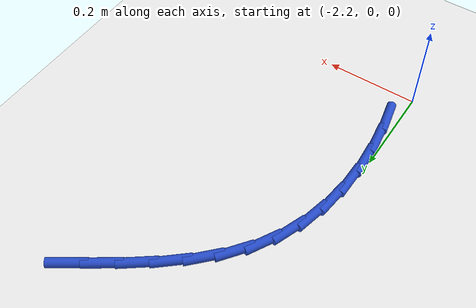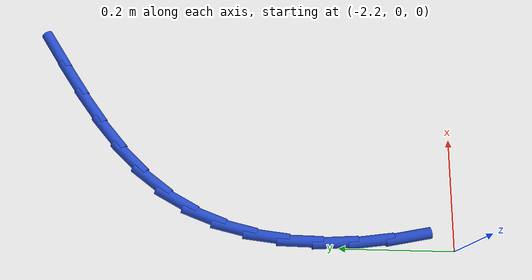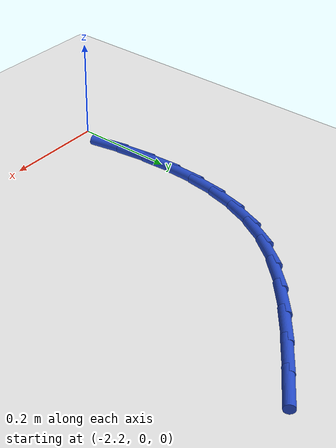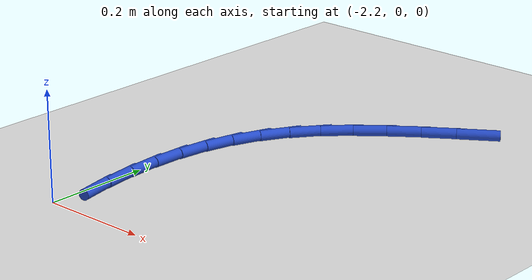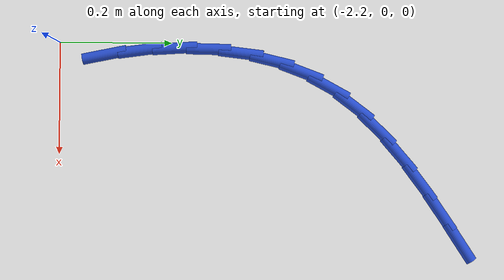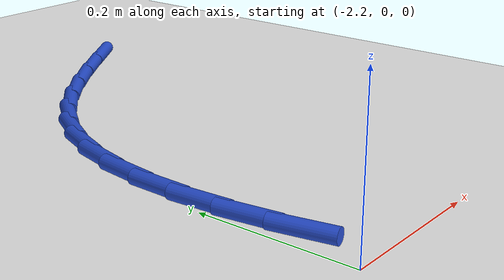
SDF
<sdf version="1.6">
 <world name="default">
  <model name="ground_plane">
   <static>1</static>
   <link name="link">
    <collision name="collision">
     <geometry><plane><normal>0 0 1</normal><size>100 100</size></plane></geometry>
     <surface><friction><ode><mu>100</mu><mu2>50</mu2></ode></friction></surface>
    </collision>
    <visual name="visual">
     <cast_shadows>0</cast_shadows>
     <geometry><plane><normal>0 0 1</normal><size>100 100</size></plane></geometry>
     <material>
      <script><uri>file://media/materials/scripts/gazebo.material</uri><name>Gazebo/WhiteGlow</name></script>
     </material>
    </visual>
   </link>
  </model>
  <model name="line">
   <link name="link_42">
    <pose>-1.8486981802445988 0.7176537736818164 0.01 0 1.57 0.5831090950408439</pose>
    <collision name="collision">
     <geometry><cylinder><radius>0.01</radius><length>0.08</length></cylinder></geometry>
    </collision>
    <visual name="visual">
     <material>
      <script><name>Gazebo/Blue</name><uri>file://media/materials/scripts/gazebo.material</uri></script>
     </material>
     <geometry><cylinder><radius>0.01</radius><length>0.08</length></cylinder></geometry>
    </visual>
   </link>
   <link name="link_43">
    <pose>-1.9027062659591447 0.6820288956986125 0.01 0 1.57 0.606166370933561</pose>
    <collision name="collision">
     <geometry><cylinder><radius>0.01</radius><length>0.08</length></cylinder></geometry>
    </collision>
    <visual name="visual">
     <material>
      <script><name>Gazebo/Blue</name><uri>file://media/materials/scripts/gazebo.material</uri></script>
     </material>
     <geometry><cylinder><radius>0.01</radius><length>0.08</length></cylinder></geometry>
    </visual>
   </link>
   <link name="link_44">
    <pose>-1.9550208834604594 0.6457629498689689 0.01 0 1.57 0.6494630289572161</pose>
    <collision name="collision">
     <geometry><cylinder><radius>0.01</radius><length>0.08</length></cylinder></geometry>
    </collision>
    <visual name="visual">
     <material>
      <script><name>Gazebo/Blue</name><uri>file://media/materials/scripts/gazebo.material</uri></script>
     </material>
     <geometry><cylinder><radius>0.01</radius><length>0.08</length></cylinder></geometry>
    </visual>
   </link>
   <link name="link_45">
    <pose>-2.0044692899447543 0.6082139338951621 0.01 0 1.57 0.7155881723429962</pose>
    <collision name="collision">
     <geometry><cylinder><radius>0.01</radius><length>0.08</length></cylinder></geometry>
    </collision>
    <visual name="visual">
     <material>
      <script><name>Gazebo/Blue</name><uri>file://media/materials/scripts/gazebo.material</uri></script>
     </material>
     <geometry><cylinder><radius>0.01</radius><length>0.08</length></cylinder></geometry>
    </visual>
   </link>
   <link name="link_46">
    <pose>-2.049878742608239 0.5687398454794678 0.01 0 1.57 0.8078096747741682</pose>
    <collision name="collision">
     <geometry><cylinder><radius>0.01</radius><length>0.08</length></cylinder></geometry>
    </collision>
    <visual name="visual">
     <material>
      <script><name>Gazebo/Blue</name><uri>file://media/materials/scripts/gazebo.material</uri></script>
     </material>
     <geometry><cylinder><radius>0.01</radius><length>0.08</length></cylinder></geometry>
    </visual>
   </link>
   <link name="link_47">
    <pose>-2.0900764986471256 0.5266986823241623 0.01 0 1.57 0.9290564744398868</pose>
    <collision name="collision">
     <geometry><cylinder><radius>0.01</radius><length>0.08</length></cylinder></geometry>
    </collision>
    <visual name="visual">
     <material>
      <script><name>Gazebo/Blue</name><uri>file://media/materials/scripts/gazebo.material</uri></script>
     </material>
     <geometry><cylinder><radius>0.01</radius><length>0.08</length></cylinder></geometry>
    </visual>
   </link>
   <link name="link_48">
    <pose>-2.1238898157220647 0.4814484424285902 0.01 0 1.57 1.0737305895255598</pose>
    <collision name="collision">
     <geometry><cylinder><radius>0.01</radius><length>0.08</length></cylinder></geometry>
    </collision>
    <visual name="visual">
     <material>
      <script><name>Gazebo/Blue</name><uri>file://media/materials/scripts/gazebo.material</uri></script>
     </material>
     <geometry><cylinder><radius>0.01</radius><length>0.08</length></cylinder></geometry>
    </visual>
   </link>
   <link name="link_49">
    <pose>-2.150428996456741 0.4325281667898482 0.01 0 1.57 1.2147832831374983</pose>
    <collision name="collision">
     <geometry><cylinder><radius>0.01</radius><length>0.08</length></cylinder></geometry>
    </collision>
    <visual name="visual">
     <material>
      <script><name>Gazebo/Blue</name><uri>file://media/materials/scripts/gazebo.material</uri></script>
     </material>
     <geometry><cylinder><radius>0.01</radius><length>0.08</length></cylinder></geometry>
    </visual>
   </link>
   <link name="link_50">
    <pose>-2.1698967075592415 0.38017560118450805 0.01 0 1.57 1.3425797322219362</pose>
    <collision name="collision">
     <geometry><cylinder><radius>0.01</radius><length>0.08</length></cylinder></geometry>
    </collision>
    <visual name="visual">
     <material>
      <script><name>Gazebo/Blue</name><uri>file://media/materials/scripts/gazebo.material</uri></script>
     </material>
     <geometry><cylinder><radius>0.01</radius><length>0.08</length></cylinder></geometry>
    </visual>
   </link>
   <link name="link_51">
    <pose>-2.182759100473076 0.3247970231512046 0.01 0 1.57 1.4553903529617385</pose>
    <collision name="collision">
     <geometry><cylinder><radius>0.01</radius><length>0.08</length></cylinder></geometry>
    </collision>
    <visual name="visual">
     <material>
      <script><name>Gazebo/Blue</name><uri>file://media/materials/scripts/gazebo.material</uri></script>
     </material>
     <geometry><cylinder><radius>0.01</radius><length>0.08</length></cylinder></geometry>
    </visual>
   </link>
   <link name="link_52">
    <pose>-2.1894823266417576 0.2667987102285731 0.01 0 1.57 1.5533561422143913</pose>
    <collision name="collision">
     <geometry><cylinder><radius>0.01</radius><length>0.08</length></cylinder></geometry>
    </collision>
    <visual name="visual">
     <material>
      <script><name>Gazebo/Blue</name><uri>file://media/materials/scripts/gazebo.material</uri></script>
     </material>
     <geometry><cylinder><radius>0.01</radius><length>0.08</length></cylinder></geometry>
    </visual>
   </link>
   <link name="link_53">
    <pose>-2.190532537508795 0.2065869399552483 0.01 0 1.57 -1.503874106635498</pose>
    <collision name="collision">
     <geometry><cylinder><radius>0.01</radius><length>0.08</length></cylinder></geometry>
    </collision>
    <visual name="visual">
     <material>
      <script><name>Gazebo/Blue</name><uri>file://media/materials/scripts/gazebo.material</uri></script>
     </material>
     <geometry><cylinder><radius>0.01</radius><length>0.08</length></cylinder></geometry>
    </visual>
   </link>
   <link name="link_54">
    <pose>-2.186375884517699 0.14456798986986494 0.01 0 1.57 -1.4314129665236701</pose>
    <collision name="collision">
     <geometry><cylinder><radius>0.01</radius><length>0.08</length></cylinder></geometry>
    </collision>
    <visual name="visual">
     <material>
      <script><name>Gazebo/Blue</name><uri>file://media/materials/scripts/gazebo.material</uri></script>
     </material>
     <geometry><cylinder><radius>0.01</radius><length>0.08</length></cylinder></geometry>
    </visual>
   </link>
   <link name="link_55">
    <pose>-2.177478519111982 0.08114813751105805 0.01 0 1.57 -1.3690900425329147</pose>
    <collision name="collision">
     <geometry><cylinder><radius>0.01</radius><length>0.08</length></cylinder></geometry>
    </collision>
    <visual name="visual">
     <material>
      <script><name>Gazebo/Blue</name><uri>file://media/materials/scripts/gazebo.material</uri></script>
     </material>
     <geometry><cylinder><radius>0.01</radius><length>0.08</length></cylinder></geometry>
    </visual>
   </link>
  </model>
 </world>
</sdf>
